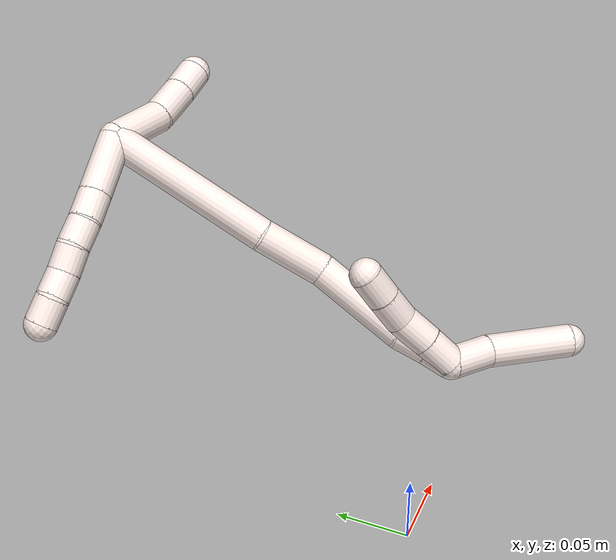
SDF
<sdf version="1.7">
 <world name="default">
  <model name="11">
   <static>0</static>
   <link name="11">
    <collision name="collision-cylinder-e_1_2_8">
     <pose>-0.022321 0.002249 -0.007263 -2.84131 -1.24248 2.72502</pose>
     <geometry><cylinder><radius>0.0125</radius><length>0.04716</length></cylinder></geometry>
     <surface>
      <friction><ode><mu>1.16</mu><mu2>1.16</mu2><slip1>0</slip1><slip2>0</slip2></ode></friction>
      <contact><ode><kp>1e+06</kp><kd>1</kd><max_vel>0</max_vel><min_depth>0.001</min_depth></ode></contact>
     </surface>
    </collision>
    <visual name="visual-cylinder-e_1_2_8">
     <pose>-0.022321 0.002249 -0.007263 -2.84131 -1.24248 2.72502</pose>
     <geometry><cylinder><radius>0.0125</radius><length>0.04716</length></cylinder></geometry>
     <material><ambient>1 0.933333 0.909804 1</ambient></material>
    </visual>
    <collision name="collision-cylinder-e_2_8_9">
     <pose>-0.055108 0.005412 -0.017749 -2.86526 -1.26106 2.7651</pose>
     <geometry><cylinder><radius>0.0125</radius><length>0.021979</length></cylinder></geometry>
     <surface>
      <friction><ode><mu>1.16</mu><mu2>1.16</mu2><slip1>0</slip1><slip2>0</slip2></ode></friction>
      <contact><ode><kp>1e+06</kp><kd>1</kd><max_vel>0</max_vel><min_depth>0.001</min_depth></ode></contact>
     </surface>
    </collision>
    <visual name="visual-cylinder-e_2_8_9">
     <pose>-0.055108 0.005412 -0.017749 -2.86526 -1.26106 2.7651</pose>
     <geometry><cylinder><radius>0.0125</radius><length>0.021979</length></cylinder></geometry>
     <material><ambient>1 0.933333 0.909804 1</ambient></material>
    </visual>
    <collision name="collision-cylinder-e_3_9_10">
     <pose>-0.075163 0.008586 -0.023749 -2.45846 -1.21339 2.19481</pose>
     <geometry><cylinder><radius>0.0125</radius><length>0.020472</length></cylinder></geometry>
     <surface>
      <friction><ode><mu>1.16</mu><mu2>1.16</mu2><slip1>0</slip1><slip2>0</slip2></ode></friction>
      <contact><ode><kp>1e+06</kp><kd>1</kd><max_vel>0</max_vel><min_depth>0.001</min_depth></ode></contact>
     </surface>
    </collision>
    <visual name="visual-cylinder-e_3_9_10">
     <pose>-0.075163 0.008586 -0.023749 -2.45846 -1.21339 2.19481</pose>
     <geometry><cylinder><radius>0.0125</radius><length>0.020472</length></cylinder></geometry>
     <material><ambient>1 0.933333 0.909804 1</ambient></material>
    </visual>
    <collision name="collision-cylinder-e_4_10_11">
     <pose>-0.093308 0.014413 -0.030419 -2.39992 -1.01796 1.92445</pose>
     <geometry><cylinder><radius>0.0125</radius><length>0.020107</length></cylinder></geometry>
     <surface>
      <friction><ode><mu>1.16</mu><mu2>1.16</mu2><slip1>0</slip1><slip2>0</slip2></ode></friction>
      <contact><ode><kp>1e+06</kp><kd>1</kd><max_vel>0</max_vel><min_depth>0.001</min_depth></ode></contact>
     </surface>
    </collision>
    <visual name="visual-cylinder-e_4_10_11">
     <pose>-0.093308 0.014413 -0.030419 -2.39992 -1.01796 1.92445</pose>
     <geometry><cylinder><radius>0.0125</radius><length>0.020107</length></cylinder></geometry>
     <material><ambient>1 0.933333 0.909804 1</ambient></material>
    </visual>
    <collision name="collision-cylinder-e_5_11_12">
     <pose>-0.111244 0.020223 -0.037144 -2.47157 -1.20301 2.20276</pose>
     <geometry><cylinder><radius>0.0125</radius><length>0.020103</length></cylinder></geometry>
     <surface>
      <friction><ode><mu>1.16</mu><mu2>1.16</mu2><slip1>0</slip1><slip2>0</slip2></ode></friction>
      <contact><ode><kp>1e+06</kp><kd>1</kd><max_vel>0</max_vel><min_depth>0.001</min_depth></ode></contact>
     </surface>
    </collision>
    <visual name="visual-cylinder-e_5_11_12">
     <pose>-0.111244 0.020223 -0.037144 -2.47157 -1.20301 2.20276</pose>
     <geometry><cylinder><radius>0.0125</radius><length>0.020103</length></cylinder></geometry>
     <material><ambient>1 0.933333 0.909804 1</ambient></material>
    </visual>
    <collision name="collision-cylinder-e_6_12_6">
     <pose>-0.129066 0.026872 -0.043309 -2.21848 -0.991518 1.65439</pose>
     <geometry><cylinder><radius>0.0125</radius><length>0.020179</length></cylinder></geometry>
     <surface>
      <friction><ode><mu>1.16</mu><mu2>1.16</mu2><slip1>0</slip1><slip2>0</slip2></ode></friction>
      <contact><ode><kp>1e+06</kp><kd>1</kd><max_vel>0</max_vel><min_depth>0.001</min_depth></ode></contact>
     </surface>
    </collision>
    <visual name="visual-cylinder-e_6_12_6">
     <pose>-0.129066 0.026872 -0.043309 -2.21848 -0.991518 1.65439</pose>
     <geometry><cylinder><radius>0.0125</radius><length>0.020179</length></cylinder></geometry>
     <material><ambient>1 0.933333 0.909804 1</ambient></material>
    </visual>
    <collision name="collision-cylinder-e_1_2_13">
     <pose>0.021627 0.001402 -0.007727 -2.96216 1.22248 -2.88625</pose>
     <geometry><cylinder><radius>0.0125</radius><length>0.046017</length></cylinder></geometry>
     <surface>
      <friction><ode><mu>1.16</mu><mu2>1.16</mu2><slip1>0</slip1><slip2>0</slip2></ode></friction>
      <contact><ode><kp>1e+06</kp><kd>1</kd><max_vel>0</max_vel><min_depth>0.001</min_depth></ode></contact>
     </surface>
    </collision>
    <visual name="visual-cylinder-e_1_2_13">
     <pose>0.021627 0.001402 -0.007727 -2.96216 1.22248 -2.88625</pose>
     <geometry><cylinder><radius>0.0125</radius><length>0.046017</length></cylinder></geometry>
     <material><ambient>1 0.933333 0.909804 1</ambient></material>
    </visual>
    <collision name="collision-cylinder-e_2_13_14">
     <pose>0.05875 0.003221 -0.016083 -2.55478 1.52211 -2.52726</pose>
     <geometry><cylinder><radius>0.0125</radius><length>0.03103</length></cylinder></geometry>
     <surface>
      <friction><ode><mu>1.16</mu><mu2>1.16</mu2><slip1>0</slip1><slip2>0</slip2></ode></friction>
      <contact><ode><kp>1e+06</kp><kd>1</kd><max_vel>0</max_vel><min_depth>0.001</min_depth></ode></contact>
     </surface>
    </collision>
    <visual name="visual-cylinder-e_2_13_14">
     <pose>0.05875 0.003221 -0.016083 -2.55478 1.52211 -2.52726</pose>
     <geometry><cylinder><radius>0.0125</radius><length>0.03103</length></cylinder></geometry>
     <material><ambient>1 0.933333 0.909804 1</ambient></material>
    </visual>
    <collision name="collision-cylinder-e_3_14_5">
     <pose>0.085721 0.003479 -0.01655 0.781143 1.55097 0.767279</pose>
     <geometry><cylinder><radius>0.0125</radius><length>0.022953</length></cylinder></geometry>
     <surface>
      <friction><ode><mu>1.16</mu><mu2>1.16</mu2><slip1>0</slip1><slip2>0</slip2></ode></friction>
      <contact><ode><kp>1e+06</kp><kd>1</kd><max_vel>0</max_vel><min_depth>0.001</min_depth></ode></contact>
     </surface>
    </collision>
    <visual name="visual-cylinder-e_3_14_5">
     <pose>0.085721 0.003479 -0.01655 0.781143 1.55097 0.767279</pose>
     <geometry><cylinder><radius>0.0125</radius><length>0.022953</length></cylinder></geometry>
     <material><ambient>1 0.933333 0.909804 1</ambient></material>
    </visual>
    <collision name="collision-cylinder-e_1_2_15">
     <pose>0.000289 -0.021176 -0.061192 2.80843 0.004467 0.026568</pose>
     <geometry><cylinder><radius>0.0125</radius><length>0.129507</length></cylinder></geometry>
     <surface>
      <friction><ode><mu>1.16</mu><mu2>1.16</mu2><slip1>0</slip1><slip2>0</slip2></ode></friction>
      <contact><ode><kp>1e+06</kp><kd>1</kd><max_vel>0</max_vel><min_depth>0.001</min_depth></ode></contact>
     </surface>
    </collision>
    <visual name="visual-cylinder-e_1_2_15">
     <pose>0.000289 -0.021176 -0.061192 2.80843 0.004467 0.026568</pose>
     <geometry><cylinder><radius>0.0125</radius><length>0.129507</length></cylinder></geometry>
     <material><ambient>1 0.933333 0.909804 1</ambient></material>
    </visual>
    <collision name="collision-cylinder-e_2_15_16">
     <pose>0.00394 -0.048696 -0.147411 2.89337 0.129482 0.958521</pose>
     <geometry><cylinder><radius>0.0125</radius><length>0.052073</length></cylinder></geometry>
     <surface>
      <friction><ode><mu>1.16</mu><mu2>1.16</mu2><slip1>0</slip1><slip2>0</slip2></ode></friction>
      <contact><ode><kp>1e+06</kp><kd>1</kd><max_vel>0</max_vel><min_depth>0.001</min_depth></ode></contact>
     </surface>
    </collision>
    <visual name="visual-cylinder-e_2_15_16">
     <pose>0.00394 -0.048696 -0.147411 2.89337 0.129482 0.958521</pose>
     <geometry><cylinder><radius>0.0125</radius><length>0.052073</length></cylinder></geometry>
     <material><ambient>1 0.933333 0.909804 1</ambient></material>
    </visual>
    <collision name="collision-cylinder-e_3_16_17">
     <pose>0.002302 -0.067905 -0.20695 2.78476 -0.134925 -0.716961</pose>
     <geometry><cylinder><radius>0.0125</radius><length>0.07434</length></cylinder></geometry>
     <surface>
      <friction><ode><mu>1.16</mu><mu2>1.16</mu2><slip1>0</slip1><slip2>0</slip2></ode></friction>
      <contact><ode><kp>1e+06</kp><kd>1</kd><max_vel>0</max_vel><min_depth>0.001</min_depth></ode></contact>
     </surface>
    </collision>
    <visual name="visual-cylinder-e_3_16_17">
     <pose>0.002302 -0.067905 -0.20695 2.78476 -0.134925 -0.716961</pose>
     <geometry><cylinder><radius>0.0125</radius><length>0.07434</length></cylinder></geometry>
     <material><ambient>1 0.933333 0.909804 1</ambient></material>
    </visual>
    <collision name="collision-cylinder-e_4_17_18">
     <pose>-0.002426 -0.085998 -0.252053 2.6831 0.023035 0.098637</pose>
     <geometry><cylinder><radius>0.0125</radius><length>0.023628</length></cylinder></geometry>
     <surface>
      <friction><ode><mu>1.16</mu><mu2>1.16</mu2><slip1>0</slip1><slip2>0</slip2></ode></friction>
      <contact><ode><kp>1e+06</kp><kd>1</kd><max_vel>0</max_vel><min_depth>0.001</min_depth></ode></contact>
     </surface>
    </collision>
    <visual name="visual-cylinder-e_4_17_18">
     <pose>-0.002426 -0.085998 -0.252053 2.6831 0.023035 0.098637</pose>
     <geometry><cylinder><radius>0.0125</radius><length>0.023628</length></cylinder></geometry>
     <material><ambient>1 0.933333 0.909804 1</ambient></material>
    </visual>
    <collision name="collision-cylinder-e_5_18_1">
     <pose>-0.001873 -0.094691 -0.272261 2.79573 0.027386 0.156468</pose>
     <geometry><cylinder><radius>0.0125</radius><length>0.020453</length></cylinder></geometry>
     <surface>
      <friction><ode><mu>1.16</mu><mu2>1.16</mu2><slip1>0</slip1><slip2>0</slip2></ode></friction>
      <contact><ode><kp>1e+06</kp><kd>1</kd><max_vel>0</max_vel><min_depth>0.001</min_depth></ode></contact>
     </surface>
    </collision>
    <visual name="visual-cylinder-e_5_18_1">
     <pose>-0.001873 -0.094691 -0.272261 2.79573 0.027386 0.156468</pose>
     <geometry><cylinder><radius>0.0125</radius><length>0.020453</length></cylinder></geometry>
     <material><ambient>1 0.933333 0.909804 1</ambient></material>
    </visual>
    <collision name="collision-cylinder-e_1_1_19">
     <pose>0.011813 -0.101393 -0.29122 2.8081 0.935397 2.49826</pose>
     <geometry><cylinder><radius>0.0125</radius><length>0.033315</length></cylinder></geometry>
     <surface>
      <friction><ode><mu>1.16</mu><mu2>1.16</mu2><slip1>0</slip1><slip2>0</slip2></ode></friction>
      <contact><ode><kp>1e+06</kp><kd>1</kd><max_vel>0</max_vel><min_depth>0.001</min_depth></ode></contact>
     </surface>
    </collision>
    <visual name="visual-cylinder-e_1_1_19">
     <pose>0.011813 -0.101393 -0.29122 2.8081 0.935397 2.49826</pose>
     <geometry><cylinder><radius>0.0125</radius><length>0.033315</length></cylinder></geometry>
     <material><ambient>1 0.933333 0.909804 1</ambient></material>
    </visual>
    <collision name="collision-cylinder-e_2_19_4">
     <pose>0.046799 -0.117456 -0.322505 2.61262 0.703924 1.87076</pose>
     <geometry><cylinder><radius>0.0125</radius><length>0.066685</length></cylinder></geometry>
     <surface>
      <friction><ode><mu>1.16</mu><mu2>1.16</mu2><slip1>0</slip1><slip2>0</slip2></ode></friction>
      <contact><ode><kp>1e+06</kp><kd>1</kd><max_vel>0</max_vel><min_depth>0.001</min_depth></ode></contact>
     </surface>
    </collision>
    <visual name="visual-cylinder-e_2_19_4">
     <pose>0.046799 -0.117456 -0.322505 2.61262 0.703924 1.87076</pose>
     <geometry><cylinder><radius>0.0125</radius><length>0.066685</length></cylinder></geometry>
     <material><ambient>1 0.933333 0.909804 1</ambient></material>
    </visual>
    <collision name="collision-cylinder-e_1_1_20">
     <pose>-0.001912 -0.097637 -0.268923 -0.040041 -0.024576 0.000492</pose>
     <geometry><cylinder><radius>0.0125</radius><length>0.02594</length></cylinder></geometry>
     <surface>
      <friction><ode><mu>1.16</mu><mu2>1.16</mu2><slip1>0</slip1><slip2>0</slip2></ode></friction>
      <contact><ode><kp>1e+06</kp><kd>1</kd><max_vel>0</max_vel><min_depth>0.001</min_depth></ode></contact>
     </surface>
    </collision>
    <visual name="visual-cylinder-e_1_1_20">
     <pose>-0.001912 -0.097637 -0.268923 -0.040041 -0.024576 0.000492</pose>
     <geometry><cylinder><radius>0.0125</radius><length>0.02594</length></cylinder></geometry>
     <material><ambient>1 0.933333 0.909804 1</ambient></material>
    </visual>
    <collision name="collision-cylinder-e_2_20_21">
     <pose>-0.002686 -0.096126 -0.24294 -0.076004 -0.034837 0.001325</pose>
     <geometry><cylinder><radius>0.0125</radius><length>0.026145</length></cylinder></geometry>
     <surface>
      <friction><ode><mu>1.16</mu><mu2>1.16</mu2><slip1>0</slip1><slip2>0</slip2></ode></friction>
      <contact><ode><kp>1e+06</kp><kd>1</kd><max_vel>0</max_vel><min_depth>0.001</min_depth></ode></contact>
     </surface>
    </collision>
    <visual name="visual-cylinder-e_2_20_21">
     <pose>-0.002686 -0.096126 -0.24294 -0.076004 -0.034837 0.001325</pose>
     <geometry><cylinder><radius>0.0125</radius><length>0.026145</length></cylinder></geometry>
     <material><ambient>1 0.933333 0.909804 1</ambient></material>
    </visual>
    <collision name="collision-cylinder-e_3_21_22">
     <pose>-0.003815 -0.097912 -0.217866 0.22662 -0.054455 -0.006198</pose>
     <geometry><cylinder><radius>0.0125</radius><length>0.024764</length></cylinder></geometry>
     <surface>
      <friction><ode><mu>1.16</mu><mu2>1.16</mu2><slip1>0</slip1><slip2>0</slip2></ode></friction>
      <contact><ode><kp>1e+06</kp><kd>1</kd><max_vel>0</max_vel><min_depth>0.001</min_depth></ode></contact>
     </surface>
    </collision>
    <visual name="visual-cylinder-e_3_21_22">
     <pose>-0.003815 -0.097912 -0.217866 0.22662 -0.054455 -0.006198</pose>
     <geometry><cylinder><radius>0.0125</radius><length>0.024764</length></cylinder></geometry>
     <material><ambient>1 0.933333 0.909804 1</ambient></material>
    </visual>
    <collision name="collision-cylinder-e_4_22_3">
     <pose>-0.004591 -0.103039 -0.194484 0.204322 -0.00875 -0.000897</pose>
     <geometry><cylinder><radius>0.0125</radius><length>0.023151</length></cylinder></geometry>
     <surface>
      <friction><ode><mu>1.16</mu><mu2>1.16</mu2><slip1>0</slip1><slip2>0</slip2></ode></friction>
      <contact><ode><kp>1e+06</kp><kd>1</kd><max_vel>0</max_vel><min_depth>0.001</min_depth></ode></contact>
     </surface>
    </collision>
    <visual name="visual-cylinder-e_4_22_3">
     <pose>-0.004591 -0.103039 -0.194484 0.204322 -0.00875 -0.000897</pose>
     <geometry><cylinder><radius>0.0125</radius><length>0.023151</length></cylinder></geometry>
     <material><ambient>1 0.933333 0.909804 1</ambient></material>
    </visual>
    <collision name="collision-sphere-3">
     <pose>-0.004692 -0.105387 -0.18315 0 -0 0</pose>
     <geometry><sphere><radius>0.0125</radius></sphere></geometry>
     <surface>
      <friction><ode><mu>1.16</mu><mu2>1.16</mu2><slip1>0</slip1><slip2>0</slip2></ode></friction>
      <contact><ode><kp>1e+06</kp><kd>1</kd><max_vel>0</max_vel><min_depth>0.001</min_depth></ode></contact>
     </surface>
    </collision>
    <visual name="visual-sphere-3">
     <pose>-0.004692 -0.105387 -0.18315 0 -0 0</pose>
     <geometry><sphere><radius>0.0125</radius></sphere></geometry>
     <material><ambient>1 0.933333 0.909804 1</ambient></material>
    </visual>
    <collision name="collision-sphere-22">
     <pose>-0.004489 -0.10069 -0.205818 0 -0 0</pose>
     <geometry><sphere><radius>0.0125</radius></sphere></geometry>
     <surface>
      <friction><ode><mu>1.16</mu><mu2>1.16</mu2><slip1>0</slip1><slip2>0</slip2></ode></friction>
      <contact><ode><kp>1e+06</kp><kd>1</kd><max_vel>0</max_vel><min_depth>0.001</min_depth></ode></contact>
     </surface>
    </collision>
    <visual name="visual-sphere-22">
     <pose>-0.004489 -0.10069 -0.205818 0 -0 0</pose>
     <geometry><sphere><radius>0.0125</radius></sphere></geometry>
     <material><ambient>1 0.933333 0.909804 1</ambient></material>
    </visual>
    <collision name="collision-sphere-21">
     <pose>-0.003141 -0.095134 -0.229913 0 -0 0</pose>
     <geometry><sphere><radius>0.0125</radius></sphere></geometry>
     <surface>
      <friction><ode><mu>1.16</mu><mu2>1.16</mu2><slip1>0</slip1><slip2>0</slip2></ode></friction>
      <contact><ode><kp>1e+06</kp><kd>1</kd><max_vel>0</max_vel><min_depth>0.001</min_depth></ode></contact>
     </surface>
    </collision>
    <visual name="visual-sphere-21">
     <pose>-0.003141 -0.095134 -0.229913 0 -0 0</pose>
     <geometry><sphere><radius>0.0125</radius></sphere></geometry>
     <material><ambient>1 0.933333 0.909804 1</ambient></material>
    </visual>
    <collision name="collision-sphere-20">
     <pose>-0.002231 -0.097118 -0.255967 0 -0 0</pose>
     <geometry><sphere><radius>0.0125</radius></sphere></geometry>
     <surface>
      <friction><ode><mu>1.16</mu><mu2>1.16</mu2><slip1>0</slip1><slip2>0</slip2></ode></friction>
      <contact><ode><kp>1e+06</kp><kd>1</kd><max_vel>0</max_vel><min_depth>0.001</min_depth></ode></contact>
     </surface>
    </collision>
    <visual name="visual-sphere-20">
     <pose>-0.002231 -0.097118 -0.255967 0 -0 0</pose>
     <geometry><sphere><radius>0.0125</radius></sphere></geometry>
     <material><ambient>1 0.933333 0.909804 1</ambient></material>
    </visual>
    <collision name="collision-sphere-4">
     <pose>0.068379 -0.130282 -0.344449 0 -0 0</pose>
     <geometry><sphere><radius>0.0125</radius></sphere></geometry>
     <surface>
      <friction><ode><mu>1.16</mu><mu2>1.16</mu2><slip1>0</slip1><slip2>0</slip2></ode></friction>
      <contact><ode><kp>1e+06</kp><kd>1</kd><max_vel>0</max_vel><min_depth>0.001</min_depth></ode></contact>
     </surface>
    </collision>
    <visual name="visual-sphere-4">
     <pose>0.068379 -0.130282 -0.344449 0 -0 0</pose>
     <geometry><sphere><radius>0.0125</radius></sphere></geometry>
     <material><ambient>1 0.933333 0.909804 1</ambient></material>
    </visual>
    <collision name="collision-sphere-12">
     <pose>-0.120623 0.022468 -0.039977 0 -0 0</pose>
     <geometry><sphere><radius>0.0125</radius></sphere></geometry>
     <surface>
      <friction><ode><mu>1.16</mu><mu2>1.16</mu2><slip1>0</slip1><slip2>0</slip2></ode></friction>
      <contact><ode><kp>1e+06</kp><kd>1</kd><max_vel>0</max_vel><min_depth>0.001</min_depth></ode></contact>
     </surface>
    </collision>
    <visual name="visual-sphere-12">
     <pose>-0.120623 0.022468 -0.039977 0 -0 0</pose>
     <geometry><sphere><radius>0.0125</radius></sphere></geometry>
     <material><ambient>1 0.933333 0.909804 1</ambient></material>
    </visual>
    <collision name="collision-sphere-11">
     <pose>-0.101864 0.017979 -0.034311 0 -0 0</pose>
     <geometry><sphere><radius>0.0125</radius></sphere></geometry>
     <surface>
      <friction><ode><mu>1.16</mu><mu2>1.16</mu2><slip1>0</slip1><slip2>0</slip2></ode></friction>
      <contact><ode><kp>1e+06</kp><kd>1</kd><max_vel>0</max_vel><min_depth>0.001</min_depth></ode></contact>
     </surface>
    </collision>
    <visual name="visual-sphere-11">
     <pose>-0.101864 0.017979 -0.034311 0 -0 0</pose>
     <geometry><sphere><radius>0.0125</radius></sphere></geometry>
     <material><ambient>1 0.933333 0.909804 1</ambient></material>
    </visual>
    <collision name="collision-sphere-10">
     <pose>-0.084752 0.010847 -0.026526 0 -0 0</pose>
     <geometry><sphere><radius>0.0125</radius></sphere></geometry>
     <surface>
      <friction><ode><mu>1.16</mu><mu2>1.16</mu2><slip1>0</slip1><slip2>0</slip2></ode></friction>
      <contact><ode><kp>1e+06</kp><kd>1</kd><max_vel>0</max_vel><min_depth>0.001</min_depth></ode></contact>
     </surface>
    </collision>
    <visual name="visual-sphere-10">
     <pose>-0.084752 0.010847 -0.026526 0 -0 0</pose>
     <geometry><sphere><radius>0.0125</radius></sphere></geometry>
     <material><ambient>1 0.933333 0.909804 1</ambient></material>
    </visual>
    <collision name="collision-sphere-9">
     <pose>-0.065574 0.006326 -0.020971 0 -0 0</pose>
     <geometry><sphere><radius>0.0125</radius></sphere></geometry>
     <surface>
      <friction><ode><mu>1.16</mu><mu2>1.16</mu2><slip1>0</slip1><slip2>0</slip2></ode></friction>
      <contact><ode><kp>1e+06</kp><kd>1</kd><max_vel>0</max_vel><min_depth>0.001</min_depth></ode></contact>
     </surface>
    </collision>
    <visual name="visual-sphere-9">
     <pose>-0.065574 0.006326 -0.020971 0 -0 0</pose>
     <geometry><sphere><radius>0.0125</radius></sphere></geometry>
     <material><ambient>1 0.933333 0.909804 1</ambient></material>
    </visual>
    <collision name="collision-sphere-2">
     <geometry><sphere><radius>0.0125</radius></sphere></geometry>
     <surface>
      <friction><ode><mu>1.16</mu><mu2>1.16</mu2><slip1>0</slip1><slip2>0</slip2></ode></friction>
      <contact><ode><kp>1e+06</kp><kd>1</kd><max_vel>0</max_vel><min_depth>0.001</min_depth></ode></contact>
     </surface>
    </collision>
    <visual name="visual-sphere-2">
     <geometry><sphere><radius>0.0125</radius></sphere></geometry>
     <material><ambient>1 0.933333 0.909804 1</ambient></material>
    </visual>
    <collision name="collision-sphere-19">
     <pose>0.02522 -0.104629 -0.300562 0 -0 0</pose>
     <geometry><sphere><radius>0.0125</radius></sphere></geometry>
     <surface>
      <friction><ode><mu>1.16</mu><mu2>1.16</mu2><slip1>0</slip1><slip2>0</slip2></ode></friction>
      <contact><ode><kp>1e+06</kp><kd>1</kd><max_vel>0</max_vel><min_depth>0.001</min_depth></ode></contact>
     </surface>
    </collision>
    <visual name="visual-sphere-19">
     <pose>0.02522 -0.104629 -0.300562 0 -0 0</pose>
     <geometry><sphere><radius>0.0125</radius></sphere></geometry>
     <material><ambient>1 0.933333 0.909804 1</ambient></material>
    </visual>
    <collision name="collision-sphere-8">
     <pose>-0.044641 0.004498 -0.014526 0 -0 0</pose>
     <geometry><sphere><radius>0.0125</radius></sphere></geometry>
     <surface>
      <friction><ode><mu>1.16</mu><mu2>1.16</mu2><slip1>0</slip1><slip2>0</slip2></ode></friction>
      <contact><ode><kp>1e+06</kp><kd>1</kd><max_vel>0</max_vel><min_depth>0.001</min_depth></ode></contact>
     </surface>
    </collision>
    <visual name="visual-sphere-8">
     <pose>-0.044641 0.004498 -0.014526 0 -0 0</pose>
     <geometry><sphere><radius>0.0125</radius></sphere></geometry>
     <material><ambient>1 0.933333 0.909804 1</ambient></material>
    </visual>
    <collision name="collision-sphere-6">
     <pose>-0.13751 0.031277 -0.046642 0 -0 0</pose>
     <geometry><sphere><radius>0.0125</radius></sphere></geometry>
     <surface>
      <friction><ode><mu>1.16</mu><mu2>1.16</mu2><slip1>0</slip1><slip2>0</slip2></ode></friction>
      <contact><ode><kp>1e+06</kp><kd>1</kd><max_vel>0</max_vel><min_depth>0.001</min_depth></ode></contact>
     </surface>
    </collision>
    <visual name="visual-sphere-6">
     <pose>-0.13751 0.031277 -0.046642 0 -0 0</pose>
     <geometry><sphere><radius>0.0125</radius></sphere></geometry>
     <material><ambient>1 0.933333 0.909804 1</ambient></material>
    </visual>
    <collision name="collision-sphere-13">
     <pose>0.043254 0.002803 -0.015454 0 -0 0</pose>
     <geometry><sphere><radius>0.0125</radius></sphere></geometry>
     <surface>
      <friction><ode><mu>1.16</mu><mu2>1.16</mu2><slip1>0</slip1><slip2>0</slip2></ode></friction>
      <contact><ode><kp>1e+06</kp><kd>1</kd><max_vel>0</max_vel><min_depth>0.001</min_depth></ode></contact>
     </surface>
    </collision>
    <visual name="visual-sphere-13">
     <pose>0.043254 0.002803 -0.015454 0 -0 0</pose>
     <geometry><sphere><radius>0.0125</radius></sphere></geometry>
     <material><ambient>1 0.933333 0.909804 1</ambient></material>
    </visual>
    <collision name="collision-sphere-14">
     <pose>0.074247 0.003639 -0.016712 0 -0 0</pose>
     <geometry><sphere><radius>0.0125</radius></sphere></geometry>
     <surface>
      <friction><ode><mu>1.16</mu><mu2>1.16</mu2><slip1>0</slip1><slip2>0</slip2></ode></friction>
      <contact><ode><kp>1e+06</kp><kd>1</kd><max_vel>0</max_vel><min_depth>0.001</min_depth></ode></contact>
     </surface>
    </collision>
    <visual name="visual-sphere-14">
     <pose>0.074247 0.003639 -0.016712 0 -0 0</pose>
     <geometry><sphere><radius>0.0125</radius></sphere></geometry>
     <material><ambient>1 0.933333 0.909804 1</ambient></material>
    </visual>
    <collision name="collision-sphere-5">
     <pose>0.097195 0.003319 -0.016389 0 -0 0</pose>
     <geometry><sphere><radius>0.0125</radius></sphere></geometry>
     <surface>
      <friction><ode><mu>1.16</mu><mu2>1.16</mu2><slip1>0</slip1><slip2>0</slip2></ode></friction>
      <contact><ode><kp>1e+06</kp><kd>1</kd><max_vel>0</max_vel><min_depth>0.001</min_depth></ode></contact>
     </surface>
    </collision>
    <visual name="visual-sphere-5">
     <pose>0.097195 0.003319 -0.016389 0 -0 0</pose>
     <geometry><sphere><radius>0.0125</radius></sphere></geometry>
     <material><ambient>1 0.933333 0.909804 1</ambient></material>
    </visual>
    <collision name="collision-sphere-15">
     <pose>0.000579 -0.042353 -0.122384 0 -0 0</pose>
     <geometry><sphere><radius>0.0125</radius></sphere></geometry>
     <surface>
      <friction><ode><mu>1.16</mu><mu2>1.16</mu2><slip1>0</slip1><slip2>0</slip2></ode></friction>
      <contact><ode><kp>1e+06</kp><kd>1</kd><max_vel>0</max_vel><min_depth>0.001</min_depth></ode></contact>
     </surface>
    </collision>
    <visual name="visual-sphere-15">
     <pose>0.000579 -0.042353 -0.122384 0 -0 0</pose>
     <geometry><sphere><radius>0.0125</radius></sphere></geometry>
     <material><ambient>1 0.933333 0.909804 1</ambient></material>
    </visual>
    <collision name="collision-sphere-16">
     <pose>0.007302 -0.055039 -0.172438 0 -0 0</pose>
     <geometry><sphere><radius>0.0125</radius></sphere></geometry>
     <surface>
      <friction><ode><mu>1.16</mu><mu2>1.16</mu2><slip1>0</slip1><slip2>0</slip2></ode></friction>
      <contact><ode><kp>1e+06</kp><kd>1</kd><max_vel>0</max_vel><min_depth>0.001</min_depth></ode></contact>
     </surface>
    </collision>
    <visual name="visual-sphere-16">
     <pose>0.007302 -0.055039 -0.172438 0 -0 0</pose>
     <geometry><sphere><radius>0.0125</radius></sphere></geometry>
     <material><ambient>1 0.933333 0.909804 1</ambient></material>
    </visual>
    <collision name="collision-sphere-17">
     <pose>-0.002698 -0.08077 -0.241462 0 -0 0</pose>
     <geometry><sphere><radius>0.0125</radius></sphere></geometry>
     <surface>
      <friction><ode><mu>1.16</mu><mu2>1.16</mu2><slip1>0</slip1><slip2>0</slip2></ode></friction>
      <contact><ode><kp>1e+06</kp><kd>1</kd><max_vel>0</max_vel><min_depth>0.001</min_depth></ode></contact>
     </surface>
    </collision>
    <visual name="visual-sphere-17">
     <pose>-0.002698 -0.08077 -0.241462 0 -0 0</pose>
     <geometry><sphere><radius>0.0125</radius></sphere></geometry>
     <material><ambient>1 0.933333 0.909804 1</ambient></material>
    </visual>
    <collision name="collision-sphere-18">
     <pose>-0.002153 -0.091225 -0.262644 0 -0 0</pose>
     <geometry><sphere><radius>0.0125</radius></sphere></geometry>
     <surface>
      <friction><ode><mu>1.16</mu><mu2>1.16</mu2><slip1>0</slip1><slip2>0</slip2></ode></friction>
      <contact><ode><kp>1e+06</kp><kd>1</kd><max_vel>0</max_vel><min_depth>0.001</min_depth></ode></contact>
     </surface>
    </collision>
    <visual name="visual-sphere-18">
     <pose>-0.002153 -0.091225 -0.262644 0 -0 0</pose>
     <geometry><sphere><radius>0.0125</radius></sphere></geometry>
     <material><ambient>1 0.933333 0.909804 1</ambient></material>
    </visual>
    <collision name="collision-sphere-1">
     <pose>-0.001593 -0.098156 -0.281879 0 -0 0</pose>
     <geometry><sphere><radius>0.0125</radius></sphere></geometry>
     <surface>
      <friction><ode><mu>1.16</mu><mu2>1.16</mu2><slip1>0</slip1><slip2>0</slip2></ode></friction>
      <contact><ode><kp>1e+06</kp><kd>1</kd><max_vel>0</max_vel><min_depth>0.001</min_depth></ode></contact>
     </surface>
    </collision>
    <visual name="visual-sphere-1">
     <pose>-0.001593 -0.098156 -0.281879 0 -0 0</pose>
     <geometry><sphere><radius>0.0125</radius></sphere></geometry>
     <material><ambient>1 0.933333 0.909804 1</ambient></material>
    </visual>
    <inertial>
     <pose>-0.002962 -0.044637 -0.135505 0 -0 0</pose>
     <mass>0.75</mass>
     <inertia>
      <ixx>0.000237</ixx>
      <ixy>0</ixy>
      <ixz>0</ixz>
      <iyy>-0.000141</iyy>
      <iyz>0</iyz>
      <izz>4.6e-05</izz>
     </inertia>
    </inertial>
   </link>
   <pose>0.150042 0.286824 0.155188 -0.754709 -0.216417 -0.088589</pose>
  </model>
 </world>
</sdf>
